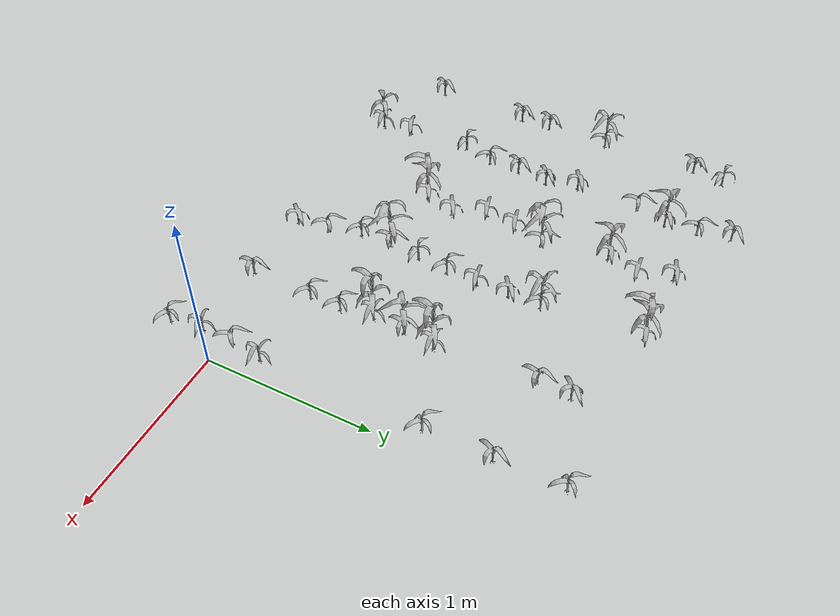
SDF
<sdf version="1.7">
 <world name="default">
  <model name="maize_-2.6063401319936164_0.07500000000000018">
   <static>1</static>
   <link name="link">
    <inertial>
     <mass>0.2</mass>
     <inertia>
      <ixx>0.166667</ixx>
      <ixy>0</ixy>
      <ixz>0</ixz>
      <iyy>0.166667</iyy>
      <iyz>0</iyz>
      <izz>0.166667</izz>
     </inertia>
    </inertial>
    <collision name="collision">
     <geometry><mesh><uri>model://corn_3/meshes/corn.dae</uri><scale>0.25 0.25 0.25</scale></mesh></geometry>
     <surface>
      <friction><ode><mu>0</mu><mu2>0</mu2></ode></friction>
      <contact><ode><kp>0</kp><kd>0</kd><max_vel>0</max_vel><min_depth>0.002</min_depth></ode></contact>
     </surface>
    </collision>
    <visual name="visual">
     <geometry><mesh><uri>model://corn_3/meshes/corn.dae</uri><scale>0.25 0.25 0.25</scale></mesh></geometry>
    </visual>
    <velocity_decay><linear>0</linear><angular>0</angular></velocity_decay>
   </link>
   <pose>-2.60634 0.075 0.05 0 -0 1.16403</pose>
  </model>
  <model name="maize_-2.588101636005906_0.6600000000000001">
   <static>1</static>
   <link name="link">
    <inertial>
     <mass>0.2</mass>
     <inertia>
      <ixx>0.166667</ixx>
      <ixy>0</ixy>
      <ixz>0</ixz>
      <iyy>0.166667</iyy>
      <iyz>0</iyz>
      <izz>0.166667</izz>
     </inertia>
    </inertial>
    <collision name="collision">
     <geometry><mesh><uri>model://corn_3/meshes/corn.dae</uri><scale>0.25 0.25 0.25</scale></mesh></geometry>
     <surface>
      <friction><ode><mu>0</mu><mu2>0</mu2></ode></friction>
      <contact><ode><kp>0</kp><kd>0</kd><max_vel>0</max_vel><min_depth>0.002</min_depth></ode></contact>
     </surface>
    </collision>
    <visual name="visual">
     <geometry><mesh><uri>model://corn_3/meshes/corn.dae</uri><scale>0.25 0.25 0.25</scale></mesh></geometry>
    </visual>
    <velocity_decay><linear>0</linear><angular>0</angular></velocity_decay>
   </link>
   <pose>-2.5881 0.66 0.05 0 -0 1.17576</pose>
  </model>
  <model name="maize_-2.5877143751891136_0.8550000000000004">
   <static>1</static>
   <link name="link">
    <inertial>
     <mass>0.2</mass>
     <inertia>
      <ixx>0.166667</ixx>
      <ixy>0</ixy>
      <ixz>0</ixz>
      <iyy>0.166667</iyy>
      <iyz>0</iyz>
      <izz>0.166667</izz>
     </inertia>
    </inertial>
    <collision name="collision">
     <geometry><mesh><uri>model://corn_3/meshes/corn.dae</uri><scale>0.25 0.25 0.25</scale></mesh></geometry>
     <surface>
      <friction><ode><mu>0</mu><mu2>0</mu2></ode></friction>
      <contact><ode><kp>0</kp><kd>0</kd><max_vel>0</max_vel><min_depth>0.002</min_depth></ode></contact>
     </surface>
    </collision>
    <visual name="visual">
     <geometry><mesh><uri>model://corn_3/meshes/corn.dae</uri><scale>0.25 0.25 0.25</scale></mesh></geometry>
    </visual>
    <velocity_decay><linear>0</linear><angular>0</angular></velocity_decay>
   </link>
   <pose>-2.58771 0.855 0.05 0 -0 1.15578</pose>
  </model>
  <model name="maize_-2.585542033847532_1.245">
   <static>1</static>
   <link name="link">
    <inertial>
     <mass>0.2</mass>
     <inertia>
      <ixx>0.166667</ixx>
      <ixy>0</ixy>
      <ixz>0</ixz>
      <iyy>0.166667</iyy>
      <iyz>0</iyz>
      <izz>0.166667</izz>
     </inertia>
    </inertial>
    <collision name="collision">
     <geometry><mesh><uri>model://corn_4/meshes/corn.dae</uri><scale>0.25 0.25 0.25</scale></mesh></geometry>
     <surface>
      <friction><ode><mu>0</mu><mu2>0</mu2></ode></friction>
      <contact><ode><kp>0</kp><kd>0</kd><max_vel>0</max_vel><min_depth>0.002</min_depth></ode></contact>
     </surface>
    </collision>
    <visual name="visual">
     <geometry><mesh><uri>model://corn_4/meshes/corn.dae</uri><scale>0.25 0.25 0.25</scale></mesh></geometry>
    </visual>
    <velocity_decay><linear>0</linear><angular>0</angular></velocity_decay>
   </link>
   <pose>-2.58554 1.245 0.05 0 -0 2.13369</pose>
  </model>
  <model name="maize_-2.608226631972405_1.83">
   <static>1</static>
   <link name="link">
    <inertial>
     <mass>0.2</mass>
     <inertia>
      <ixx>0.166667</ixx>
      <ixy>0</ixy>
      <ixz>0</ixz>
      <iyy>0.166667</iyy>
      <iyz>0</iyz>
      <izz>0.166667</izz>
     </inertia>
    </inertial>
    <collision name="collision">
     <geometry><mesh><uri>model://corn_3/meshes/corn.dae</uri><scale>0.25 0.25 0.25</scale></mesh></geometry>
     <surface>
      <friction><ode><mu>0</mu><mu2>0</mu2></ode></friction>
      <contact><ode><kp>0</kp><kd>0</kd><max_vel>0</max_vel><min_depth>0.002</min_depth></ode></contact>
     </surface>
    </collision>
    <visual name="visual">
     <geometry><mesh><uri>model://corn_3/meshes/corn.dae</uri><scale>0.25 0.25 0.25</scale></mesh></geometry>
    </visual>
    <velocity_decay><linear>0</linear><angular>0</angular></velocity_decay>
   </link>
   <pose>-2.60823 1.83 0.05 0 -0 1.07333</pose>
  </model>
  <model name="maize_-2.575589637799434_2.0250000000000004">
   <static>1</static>
   <link name="link">
    <inertial>
     <mass>0.2</mass>
     <inertia>
      <ixx>0.166667</ixx>
      <ixy>0</ixy>
      <ixz>0</ixz>
      <iyy>0.166667</iyy>
      <iyz>0</iyz>
      <izz>0.166667</izz>
     </inertia>
    </inertial>
    <collision name="collision">
     <geometry><mesh><uri>model://corn_3/meshes/corn.dae</uri><scale>0.25 0.25 0.25</scale></mesh></geometry>
     <surface>
      <friction><ode><mu>0</mu><mu2>0</mu2></ode></friction>
      <contact><ode><kp>0</kp><kd>0</kd><max_vel>0</max_vel><min_depth>0.002</min_depth></ode></contact>
     </surface>
    </collision>
    <visual name="visual">
     <geometry><mesh><uri>model://corn_3/meshes/corn.dae</uri><scale>0.25 0.25 0.25</scale></mesh></geometry>
    </visual>
    <velocity_decay><linear>0</linear><angular>0</angular></velocity_decay>
   </link>
   <pose>-2.57559 2.025 0.05 0 -0 2.99659</pose>
  </model>
  <model name="maize_-2.1157385612852697_-0.1200000000000001">
   <static>1</static>
   <link name="link">
    <inertial>
     <mass>0.2</mass>
     <inertia>
      <ixx>0.166667</ixx>
      <ixy>0</ixy>
      <ixz>0</ixz>
      <iyy>0.166667</iyy>
      <iyz>0</iyz>
      <izz>0.166667</izz>
     </inertia>
    </inertial>
    <collision name="collision">
     <geometry><mesh><uri>model://corn_4/meshes/corn.dae</uri><scale>0.25 0.25 0.25</scale></mesh></geometry>
     <surface>
      <friction><ode><mu>0</mu><mu2>0</mu2></ode></friction>
      <contact><ode><kp>0</kp><kd>0</kd><max_vel>0</max_vel><min_depth>0.002</min_depth></ode></contact>
     </surface>
    </collision>
    <visual name="visual">
     <geometry><mesh><uri>model://corn_4/meshes/corn.dae</uri><scale>0.25 0.25 0.25</scale></mesh></geometry>
    </visual>
    <velocity_decay><linear>0</linear><angular>0</angular></velocity_decay>
   </link>
   <pose>-2.11574 -0.12 0.05 0 -0 0.167618</pose>
  </model>
  <model name="maize_-2.129276832453321_0.07500000000000018">
   <static>1</static>
   <link name="link">
    <inertial>
     <mass>0.2</mass>
     <inertia>
      <ixx>0.166667</ixx>
      <ixy>0</ixy>
      <ixz>0</ixz>
      <iyy>0.166667</iyy>
      <iyz>0</iyz>
      <izz>0.166667</izz>
     </inertia>
    </inertial>
    <collision name="collision">
     <geometry><mesh><uri>model://corn_3/meshes/corn.dae</uri><scale>0.25 0.25 0.25</scale></mesh></geometry>
     <surface>
      <friction><ode><mu>0</mu><mu2>0</mu2></ode></friction>
      <contact><ode><kp>0</kp><kd>0</kd><max_vel>0</max_vel><min_depth>0.002</min_depth></ode></contact>
     </surface>
    </collision>
    <visual name="visual">
     <geometry><mesh><uri>model://corn_3/meshes/corn.dae</uri><scale>0.25 0.25 0.25</scale></mesh></geometry>
    </visual>
    <velocity_decay><linear>0</linear><angular>0</angular></velocity_decay>
   </link>
   <pose>-2.12928 0.075 0.05 0 -0 0.419549</pose>
  </model>
  <model name="maize_-2.156761907249118_0.46500000000000075">
   <static>1</static>
   <link name="link">
    <inertial>
     <mass>0.2</mass>
     <inertia>
      <ixx>0.166667</ixx>
      <ixy>0</ixy>
      <ixz>0</ixz>
      <iyy>0.166667</iyy>
      <iyz>0</iyz>
      <izz>0.166667</izz>
     </inertia>
    </inertial>
    <collision name="collision">
     <geometry><mesh><uri>model://corn_3/meshes/corn.dae</uri><scale>0.25 0.25 0.25</scale></mesh></geometry>
     <surface>
      <friction><ode><mu>0</mu><mu2>0</mu2></ode></friction>
      <contact><ode><kp>0</kp><kd>0</kd><max_vel>0</max_vel><min_depth>0.002</min_depth></ode></contact>
     </surface>
    </collision>
    <visual name="visual">
     <geometry><mesh><uri>model://corn_3/meshes/corn.dae</uri><scale>0.25 0.25 0.25</scale></mesh></geometry>
    </visual>
    <velocity_decay><linear>0</linear><angular>0</angular></velocity_decay>
   </link>
   <pose>-2.15676 0.465 0.05 0 -0 3.10047</pose>
  </model>
  <model name="maize_-2.0960210611735683_0.6600000000000001">
   <static>1</static>
   <link name="link">
    <inertial>
     <mass>0.2</mass>
     <inertia>
      <ixx>0.166667</ixx>
      <ixy>0</ixy>
      <ixz>0</ixz>
      <iyy>0.166667</iyy>
      <iyz>0</iyz>
      <izz>0.166667</izz>
     </inertia>
    </inertial>
    <collision name="collision">
     <geometry><mesh><uri>model://corn_3/meshes/corn.dae</uri><scale>0.25 0.25 0.25</scale></mesh></geometry>
     <surface>
      <friction><ode><mu>0</mu><mu2>0</mu2></ode></friction>
      <contact><ode><kp>0</kp><kd>0</kd><max_vel>0</max_vel><min_depth>0.002</min_depth></ode></contact>
     </surface>
    </collision>
    <visual name="visual">
     <geometry><mesh><uri>model://corn_3/meshes/corn.dae</uri><scale>0.25 0.25 0.25</scale></mesh></geometry>
    </visual>
    <velocity_decay><linear>0</linear><angular>0</angular></velocity_decay>
   </link>
   <pose>-2.09602 0.66 0.05 0 -0 2.32397</pose>
  </model>
  <model name="maize_-2.0995878956348037_0.8550000000000004">
   <static>1</static>
   <link name="link">
    <inertial>
     <mass>0.2</mass>
     <inertia>
      <ixx>0.166667</ixx>
      <ixy>0</ixy>
      <ixz>0</ixz>
      <iyy>0.166667</iyy>
      <iyz>0</iyz>
      <izz>0.166667</izz>
     </inertia>
    </inertial>
    <collision name="collision">
     <geometry><mesh><uri>model://corn_3/meshes/corn.dae</uri><scale>0.25 0.25 0.25</scale></mesh></geometry>
     <surface>
      <friction><ode><mu>0</mu><mu2>0</mu2></ode></friction>
      <contact><ode><kp>0</kp><kd>0</kd><max_vel>0</max_vel><min_depth>0.002</min_depth></ode></contact>
     </surface>
    </collision>
    <visual name="visual">
     <geometry><mesh><uri>model://corn_3/meshes/corn.dae</uri><scale>0.25 0.25 0.25</scale></mesh></geometry>
    </visual>
    <velocity_decay><linear>0</linear><angular>0</angular></velocity_decay>
   </link>
   <pose>-2.09959 0.855 0.05 0 -0 1.1771</pose>
  </model>
  <model name="maize_-2.0798256883792483_1.0500000000000007">
   <static>1</static>
   <link name="link">
    <inertial>
     <mass>0.2</mass>
     <inertia>
      <ixx>0.166667</ixx>
      <ixy>0</ixy>
      <ixz>0</ixz>
      <iyy>0.166667</iyy>
      <iyz>0</iyz>
      <izz>0.166667</izz>
     </inertia>
    </inertial>
    <collision name="collision">
     <geometry><mesh><uri>model://corn_3/meshes/corn.dae</uri><scale>0.25 0.25 0.25</scale></mesh></geometry>
     <surface>
      <friction><ode><mu>0</mu><mu2>0</mu2></ode></friction>
      <contact><ode><kp>0</kp><kd>0</kd><max_vel>0</max_vel><min_depth>0.002</min_depth></ode></contact>
     </surface>
    </collision>
    <visual name="visual">
     <geometry><mesh><uri>model://corn_3/meshes/corn.dae</uri><scale>0.25 0.25 0.25</scale></mesh></geometry>
    </visual>
    <velocity_decay><linear>0</linear><angular>0</angular></velocity_decay>
   </link>
   <pose>-2.07983 1.05 0.05 0 -0 0.885245</pose>
  </model>
  <model name="maize_-2.126718128030405_1.245">
   <static>1</static>
   <link name="link">
    <inertial>
     <mass>0.2</mass>
     <inertia>
      <ixx>0.166667</ixx>
      <ixy>0</ixy>
      <ixz>0</ixz>
      <iyy>0.166667</iyy>
      <iyz>0</iyz>
      <izz>0.166667</izz>
     </inertia>
    </inertial>
    <collision name="collision">
     <geometry><mesh><uri>model://corn_3/meshes/corn.dae</uri><scale>0.25 0.25 0.25</scale></mesh></geometry>
     <surface>
      <friction><ode><mu>0</mu><mu2>0</mu2></ode></friction>
      <contact><ode><kp>0</kp><kd>0</kd><max_vel>0</max_vel><min_depth>0.002</min_depth></ode></contact>
     </surface>
    </collision>
    <visual name="visual">
     <geometry><mesh><uri>model://corn_3/meshes/corn.dae</uri><scale>0.25 0.25 0.25</scale></mesh></geometry>
    </visual>
    <velocity_decay><linear>0</linear><angular>0</angular></velocity_decay>
   </link>
   <pose>-2.12672 1.245 0.05 0 -0 0.642948</pose>
  </model>
  <model name="maize_-2.117609915493876_1.6350000000000007">
   <static>1</static>
   <link name="link">
    <inertial>
     <mass>0.2</mass>
     <inertia>
      <ixx>0.166667</ixx>
      <ixy>0</ixy>
      <ixz>0</ixz>
      <iyy>0.166667</iyy>
      <iyz>0</iyz>
      <izz>0.166667</izz>
     </inertia>
    </inertial>
    <collision name="collision">
     <geometry><mesh><uri>model://corn_3/meshes/corn.dae</uri><scale>0.25 0.25 0.25</scale></mesh></geometry>
     <surface>
      <friction><ode><mu>0</mu><mu2>0</mu2></ode></friction>
      <contact><ode><kp>0</kp><kd>0</kd><max_vel>0</max_vel><min_depth>0.002</min_depth></ode></contact>
     </surface>
    </collision>
    <visual name="visual">
     <geometry><mesh><uri>model://corn_3/meshes/corn.dae</uri><scale>0.25 0.25 0.25</scale></mesh></geometry>
    </visual>
    <velocity_decay><linear>0</linear><angular>0</angular></velocity_decay>
   </link>
   <pose>-2.11761 1.635 0.05 0 -0 1.7949</pose>
  </model>
  <model name="maize_-2.05956948109465_1.83">
   <static>1</static>
   <link name="link">
    <inertial>
     <mass>0.2</mass>
     <inertia>
      <ixx>0.166667</ixx>
      <ixy>0</ixy>
      <ixz>0</ixz>
      <iyy>0.166667</iyy>
      <iyz>0</iyz>
      <izz>0.166667</izz>
     </inertia>
    </inertial>
    <collision name="collision">
     <geometry><mesh><uri>model://corn_4/meshes/corn.dae</uri><scale>0.25 0.25 0.25</scale></mesh></geometry>
     <surface>
      <friction><ode><mu>0</mu><mu2>0</mu2></ode></friction>
      <contact><ode><kp>0</kp><kd>0</kd><max_vel>0</max_vel><min_depth>0.002</min_depth></ode></contact>
     </surface>
    </collision>
    <visual name="visual">
     <geometry><mesh><uri>model://corn_4/meshes/corn.dae</uri><scale>0.25 0.25 0.25</scale></mesh></geometry>
    </visual>
    <velocity_decay><linear>0</linear><angular>0</angular></velocity_decay>
   </link>
   <pose>-2.05957 1.83 0.05 0 -0 0.683004</pose>
  </model>
  <model name="maize_-2.075829909603941_2.0250000000000004">
   <static>1</static>
   <link name="link">
    <inertial>
     <mass>0.2</mass>
     <inertia>
      <ixx>0.166667</ixx>
      <ixy>0</ixy>
      <ixz>0</ixz>
      <iyy>0.166667</iyy>
      <iyz>0</iyz>
      <izz>0.166667</izz>
     </inertia>
    </inertial>
    <collision name="collision">
     <geometry><mesh><uri>model://corn_3/meshes/corn.dae</uri><scale>0.25 0.25 0.25</scale></mesh></geometry>
     <surface>
      <friction><ode><mu>0</mu><mu2>0</mu2></ode></friction>
      <contact><ode><kp>0</kp><kd>0</kd><max_vel>0</max_vel><min_depth>0.002</min_depth></ode></contact>
     </surface>
    </collision>
    <visual name="visual">
     <geometry><mesh><uri>model://corn_3/meshes/corn.dae</uri><scale>0.25 0.25 0.25</scale></mesh></geometry>
    </visual>
    <velocity_decay><linear>0</linear><angular>0</angular></velocity_decay>
   </link>
   <pose>-2.07583 2.025 0.05 0 -0 2.037</pose>
  </model>
  <model name="maize_-2.1252953353602706_2.2200000000000006">
   <static>1</static>
   <link name="link">
    <inertial>
     <mass>0.2</mass>
     <inertia>
      <ixx>0.166667</ixx>
      <ixy>0</ixy>
      <ixz>0</ixz>
      <iyy>0.166667</iyy>
      <iyz>0</iyz>
      <izz>0.166667</izz>
     </inertia>
    </inertial>
    <collision name="collision">
     <geometry><mesh><uri>model://corn_3/meshes/corn.dae</uri><scale>0.25 0.25 0.25</scale></mesh></geometry>
     <surface>
      <friction><ode><mu>0</mu><mu2>0</mu2></ode></friction>
      <contact><ode><kp>0</kp><kd>0</kd><max_vel>0</max_vel><min_depth>0.002</min_depth></ode></contact>
     </surface>
    </collision>
    <visual name="visual">
     <geometry><mesh><uri>model://corn_3/meshes/corn.dae</uri><scale>0.25 0.25 0.25</scale></mesh></geometry>
    </visual>
    <velocity_decay><linear>0</linear><angular>0</angular></velocity_decay>
   </link>
   <pose>-2.12529 2.22 0.05 0 -0 0.857335</pose>
  </model>
  <model name="maize_-1.6239611559850142_0.46500000000000075">
   <static>1</static>
   <link name="link">
    <inertial>
     <mass>0.2</mass>
     <inertia>
      <ixx>0.166667</ixx>
      <ixy>0</ixy>
      <ixz>0</ixz>
      <iyy>0.166667</iyy>
      <iyz>0</iyz>
      <izz>0.166667</izz>
     </inertia>
    </inertial>
    <collision name="collision">
     <geometry><mesh><uri>model://corn_5/meshes/corn.dae</uri><scale>0.25 0.25 0.25</scale></mesh></geometry>
     <surface>
      <friction><ode><mu>0</mu><mu2>0</mu2></ode></friction>
      <contact><ode><kp>0</kp><kd>0</kd><max_vel>0</max_vel><min_depth>0.002</min_depth></ode></contact>
     </surface>
    </collision>
    <visual name="visual">
     <geometry><mesh><uri>model://corn_5/meshes/corn.dae</uri><scale>0.25 0.25 0.25</scale></mesh></geometry>
    </visual>
    <velocity_decay><linear>0</linear><angular>0</angular></velocity_decay>
   </link>
   <pose>-1.62396 0.465 0.05 0 -0 0.589417</pose>
  </model>
  <model name="maize_-1.564001727999122_0.6600000000000001">
   <static>1</static>
   <link name="link">
    <inertial>
     <mass>0.2</mass>
     <inertia>
      <ixx>0.166667</ixx>
      <ixy>0</ixy>
      <ixz>0</ixz>
      <iyy>0.166667</iyy>
      <iyz>0</iyz>
      <izz>0.166667</izz>
     </inertia>
    </inertial>
    <collision name="collision">
     <geometry><mesh><uri>model://corn_3/meshes/corn.dae</uri><scale>0.25 0.25 0.25</scale></mesh></geometry>
     <surface>
      <friction><ode><mu>0</mu><mu2>0</mu2></ode></friction>
      <contact><ode><kp>0</kp><kd>0</kd><max_vel>0</max_vel><min_depth>0.002</min_depth></ode></contact>
     </surface>
    </collision>
    <visual name="visual">
     <geometry><mesh><uri>model://corn_3/meshes/corn.dae</uri><scale>0.25 0.25 0.25</scale></mesh></geometry>
    </visual>
    <velocity_decay><linear>0</linear><angular>0</angular></velocity_decay>
   </link>
   <pose>-1.564 0.66 0.05 0 -0 0.604994</pose>
  </model>
  <model name="maize_-1.6502086319644096_0.8550000000000004">
   <static>1</static>
   <link name="link">
    <inertial>
     <mass>0.2</mass>
     <inertia>
      <ixx>0.166667</ixx>
      <ixy>0</ixy>
      <ixz>0</ixz>
      <iyy>0.166667</iyy>
      <iyz>0</iyz>
      <izz>0.166667</izz>
     </inertia>
    </inertial>
    <collision name="collision">
     <geometry><mesh><uri>model://corn_3/meshes/corn.dae</uri><scale>0.25 0.25 0.25</scale></mesh></geometry>
     <surface>
      <friction><ode><mu>0</mu><mu2>0</mu2></ode></friction>
      <contact><ode><kp>0</kp><kd>0</kd><max_vel>0</max_vel><min_depth>0.002</min_depth></ode></contact>
     </surface>
    </collision>
    <visual name="visual">
     <geometry><mesh><uri>model://corn_3/meshes/corn.dae</uri><scale>0.25 0.25 0.25</scale></mesh></geometry>
    </visual>
    <velocity_decay><linear>0</linear><angular>0</angular></velocity_decay>
   </link>
   <pose>-1.65021 0.855 0.05 0 -0 0.35887</pose>
  </model>
  <model name="maize_-1.623080267966523_1.0500000000000007">
   <static>1</static>
   <link name="link">
    <inertial>
     <mass>0.2</mass>
     <inertia>
      <ixx>0.166667</ixx>
      <ixy>0</ixy>
      <ixz>0</ixz>
      <iyy>0.166667</iyy>
      <iyz>0</iyz>
      <izz>0.166667</izz>
     </inertia>
    </inertial>
    <collision name="collision">
     <geometry><mesh><uri>model://corn_3/meshes/corn.dae</uri><scale>0.25 0.25 0.25</scale></mesh></geometry>
     <surface>
      <friction><ode><mu>0</mu><mu2>0</mu2></ode></friction>
      <contact><ode><kp>0</kp><kd>0</kd><max_vel>0</max_vel><min_depth>0.002</min_depth></ode></contact>
     </surface>
    </collision>
    <visual name="visual">
     <geometry><mesh><uri>model://corn_3/meshes/corn.dae</uri><scale>0.25 0.25 0.25</scale></mesh></geometry>
    </visual>
    <velocity_decay><linear>0</linear><angular>0</angular></velocity_decay>
   </link>
   <pose>-1.62308 1.05 0.05 0 -0 0.354531</pose>
  </model>
  <model name="maize_-1.5654148782305803_1.245">
   <static>1</static>
   <link name="link">
    <inertial>
     <mass>0.2</mass>
     <inertia>
      <ixx>0.166667</ixx>
      <ixy>0</ixy>
      <ixz>0</ixz>
      <iyy>0.166667</iyy>
      <iyz>0</iyz>
      <izz>0.166667</izz>
     </inertia>
    </inertial>
    <collision name="collision">
     <geometry><mesh><uri>model://corn_5/meshes/corn.dae</uri><scale>0.25 0.25 0.25</scale></mesh></geometry>
     <surface>
      <friction><ode><mu>0</mu><mu2>0</mu2></ode></friction>
      <contact><ode><kp>0</kp><kd>0</kd><max_vel>0</max_vel><min_depth>0.002</min_depth></ode></contact>
     </surface>
    </collision>
    <visual name="visual">
     <geometry><mesh><uri>model://corn_5/meshes/corn.dae</uri><scale>0.25 0.25 0.25</scale></mesh></geometry>
    </visual>
    <velocity_decay><linear>0</linear><angular>0</angular></velocity_decay>
   </link>
   <pose>-1.56542 1.245 0.05 0 -0 1.99974</pose>
  </model>
  <model name="maize_-1.6406767518054066_1.6350000000000007">
   <static>1</static>
   <link name="link">
    <inertial>
     <mass>0.2</mass>
     <inertia>
      <ixx>0.166667</ixx>
      <ixy>0</ixy>
      <ixz>0</ixz>
      <iyy>0.166667</iyy>
      <iyz>0</iyz>
      <izz>0.166667</izz>
     </inertia>
    </inertial>
    <collision name="collision">
     <geometry><mesh><uri>model://corn_4/meshes/corn.dae</uri><scale>0.25 0.25 0.25</scale></mesh></geometry>
     <surface>
      <friction><ode><mu>0</mu><mu2>0</mu2></ode></friction>
      <contact><ode><kp>0</kp><kd>0</kd><max_vel>0</max_vel><min_depth>0.002</min_depth></ode></contact>
     </surface>
    </collision>
    <visual name="visual">
     <geometry><mesh><uri>model://corn_4/meshes/corn.dae</uri><scale>0.25 0.25 0.25</scale></mesh></geometry>
    </visual>
    <velocity_decay><linear>0</linear><angular>0</angular></velocity_decay>
   </link>
   <pose>-1.64068 1.635 0.05 0 -0 0.525819</pose>
  </model>
  <model name="maize_-1.5818211434637046_1.83">
   <static>1</static>
   <link name="link">
    <inertial>
     <mass>0.2</mass>
     <inertia>
      <ixx>0.166667</ixx>
      <ixy>0</ixy>
      <ixz>0</ixz>
      <iyy>0.166667</iyy>
      <iyz>0</iyz>
      <izz>0.166667</izz>
     </inertia>
    </inertial>
    <collision name="collision">
     <geometry><mesh><uri>model://corn_3/meshes/corn.dae</uri><scale>0.25 0.25 0.25</scale></mesh></geometry>
     <surface>
      <friction><ode><mu>0</mu><mu2>0</mu2></ode></friction>
      <contact><ode><kp>0</kp><kd>0</kd><max_vel>0</max_vel><min_depth>0.002</min_depth></ode></contact>
     </surface>
    </collision>
    <visual name="visual">
     <geometry><mesh><uri>model://corn_3/meshes/corn.dae</uri><scale>0.25 0.25 0.25</scale></mesh></geometry>
    </visual>
    <velocity_decay><linear>0</linear><angular>0</angular></velocity_decay>
   </link>
   <pose>-1.58182 1.83 0.05 0 -0 0.191509</pose>
  </model>
  <model name="maize_-1.658496293239595_2.0250000000000004">
   <static>1</static>
   <link name="link">
    <inertial>
     <mass>0.2</mass>
     <inertia>
      <ixx>0.166667</ixx>
      <ixy>0</ixy>
      <ixz>0</ixz>
      <iyy>0.166667</iyy>
      <iyz>0</iyz>
      <izz>0.166667</izz>
     </inertia>
    </inertial>
    <collision name="collision">
     <geometry><mesh><uri>model://corn_3/meshes/corn.dae</uri><scale>0.25 0.25 0.25</scale></mesh></geometry>
     <surface>
      <friction><ode><mu>0</mu><mu2>0</mu2></ode></friction>
      <contact><ode><kp>0</kp><kd>0</kd><max_vel>0</max_vel><min_depth>0.002</min_depth></ode></contact>
     </surface>
    </collision>
    <visual name="visual">
     <geometry><mesh><uri>model://corn_3/meshes/corn.dae</uri><scale>0.25 0.25 0.25</scale></mesh></geometry>
    </visual>
    <velocity_decay><linear>0</linear><angular>0</angular></velocity_decay>
   </link>
   <pose>-1.6585 2.025 0.05 0 -0 0.413821</pose>
  </model>
  <model name="maize_-1.0785105172808556_-0.1200000000000001">
   <static>1</static>
   <link name="link">
    <inertial>
     <mass>0.2</mass>
     <inertia>
      <ixx>0.166667</ixx>
      <ixy>0</ixy>
      <ixz>0</ixz>
      <iyy>0.166667</iyy>
      <iyz>0</iyz>
      <izz>0.166667</izz>
     </inertia>
    </inertial>
    <collision name="collision">
     <geometry><mesh><uri>model://corn_3/meshes/corn.dae</uri><scale>0.25 0.25 0.25</scale></mesh></geometry>
     <surface>
      <friction><ode><mu>0</mu><mu2>0</mu2></ode></friction>
      <contact><ode><kp>0</kp><kd>0</kd><max_vel>0</max_vel><min_depth>0.002</min_depth></ode></contact>
     </surface>
    </collision>
    <visual name="visual">
     <geometry><mesh><uri>model://corn_3/meshes/corn.dae</uri><scale>0.25 0.25 0.25</scale></mesh></geometry>
    </visual>
    <velocity_decay><linear>0</linear><angular>0</angular></velocity_decay>
   </link>
   <pose>-1.07851 -0.12 0.05 0 -0 0.899696</pose>
  </model>
  <model name="maize_-1.1016131504314863_0.07500000000000018">
   <static>1</static>
   <link name="link">
    <inertial>
     <mass>0.2</mass>
     <inertia>
      <ixx>0.166667</ixx>
      <ixy>0</ixy>
      <ixz>0</ixz>
      <iyy>0.166667</iyy>
      <iyz>0</iyz>
      <izz>0.166667</izz>
     </inertia>
    </inertial>
    <collision name="collision">
     <geometry><mesh><uri>model://corn_3/meshes/corn.dae</uri><scale>0.25 0.25 0.25</scale></mesh></geometry>
     <surface>
      <friction><ode><mu>0</mu><mu2>0</mu2></ode></friction>
      <contact><ode><kp>0</kp><kd>0</kd><max_vel>0</max_vel><min_depth>0.002</min_depth></ode></contact>
     </surface>
    </collision>
    <visual name="visual">
     <geometry><mesh><uri>model://corn_3/meshes/corn.dae</uri><scale>0.25 0.25 0.25</scale></mesh></geometry>
    </visual>
    <velocity_decay><linear>0</linear><angular>0</angular></velocity_decay>
   </link>
   <pose>-1.10161 0.075 0.05 0 -0 2.27053</pose>
  </model>
  <model name="maize_-1.1600474661601758_0.27000000000000046">
   <static>1</static>
   <link name="link">
    <inertial>
     <mass>0.2</mass>
     <inertia>
      <ixx>0.166667</ixx>
      <ixy>0</ixy>
      <ixz>0</ixz>
      <iyy>0.166667</iyy>
      <iyz>0</iyz>
      <izz>0.166667</izz>
     </inertia>
    </inertial>
    <collision name="collision">
     <geometry><mesh><uri>model://corn_3/meshes/corn.dae</uri><scale>0.25 0.25 0.25</scale></mesh></geometry>
     <surface>
      <friction><ode><mu>0</mu><mu2>0</mu2></ode></friction>
      <contact><ode><kp>0</kp><kd>0</kd><max_vel>0</max_vel><min_depth>0.002</min_depth></ode></contact>
     </surface>
    </collision>
    <visual name="visual">
     <geometry><mesh><uri>model://corn_3/meshes/corn.dae</uri><scale>0.25 0.25 0.25</scale></mesh></geometry>
    </visual>
    <velocity_decay><linear>0</linear><angular>0</angular></velocity_decay>
   </link>
   <pose>-1.16005 0.27 0.05 0 -0 2.6028</pose>
  </model>
  <model name="maize_-1.164751757333123_0.46500000000000075">
   <static>1</static>
   <link name="link">
    <inertial>
     <mass>0.2</mass>
     <inertia>
      <ixx>0.166667</ixx>
      <ixy>0</ixy>
      <ixz>0</ixz>
      <iyy>0.166667</iyy>
      <iyz>0</iyz>
      <izz>0.166667</izz>
     </inertia>
    </inertial>
    <collision name="collision">
     <geometry><mesh><uri>model://corn_5/meshes/corn.dae</uri><scale>0.25 0.25 0.25</scale></mesh></geometry>
     <surface>
      <friction><ode><mu>0</mu><mu2>0</mu2></ode></friction>
      <contact><ode><kp>0</kp><kd>0</kd><max_vel>0</max_vel><min_depth>0.002</min_depth></ode></contact>
     </surface>
    </collision>
    <visual name="visual">
     <geometry><mesh><uri>model://corn_5/meshes/corn.dae</uri><scale>0.25 0.25 0.25</scale></mesh></geometry>
    </visual>
    <velocity_decay><linear>0</linear><angular>0</angular></velocity_decay>
   </link>
   <pose>-1.16475 0.465 0.05 0 -0 1.77177</pose>
  </model>
  <model name="maize_-1.1424107226295321_0.6600000000000001">
   <static>1</static>
   <link name="link">
    <inertial>
     <mass>0.2</mass>
     <inertia>
      <ixx>0.166667</ixx>
      <ixy>0</ixy>
      <ixz>0</ixz>
      <iyy>0.166667</iyy>
      <iyz>0</iyz>
      <izz>0.166667</izz>
     </inertia>
    </inertial>
    <collision name="collision">
     <geometry><mesh><uri>model://corn_3/meshes/corn.dae</uri><scale>0.25 0.25 0.25</scale></mesh></geometry>
     <surface>
      <friction><ode><mu>0</mu><mu2>0</mu2></ode></friction>
      <contact><ode><kp>0</kp><kd>0</kd><max_vel>0</max_vel><min_depth>0.002</min_depth></ode></contact>
     </surface>
    </collision>
    <visual name="visual">
     <geometry><mesh><uri>model://corn_3/meshes/corn.dae</uri><scale>0.25 0.25 0.25</scale></mesh></geometry>
    </visual>
    <velocity_decay><linear>0</linear><angular>0</angular></velocity_decay>
   </link>
   <pose>-1.14241 0.66 0.05 0 -0 3.13934</pose>
  </model>
  <model name="maize_-1.1228776452156501_0.8550000000000004">
   <static>1</static>
   <link name="link">
    <inertial>
     <mass>0.2</mass>
     <inertia>
      <ixx>0.166667</ixx>
      <ixy>0</ixy>
      <ixz>0</ixz>
      <iyy>0.166667</iyy>
      <iyz>0</iyz>
      <izz>0.166667</izz>
     </inertia>
    </inertial>
    <collision name="collision">
     <geometry><mesh><uri>model://corn_3/meshes/corn.dae</uri><scale>0.25 0.25 0.25</scale></mesh></geometry>
     <surface>
      <friction><ode><mu>0</mu><mu2>0</mu2></ode></friction>
      <contact><ode><kp>0</kp><kd>0</kd><max_vel>0</max_vel><min_depth>0.002</min_depth></ode></contact>
     </surface>
    </collision>
    <visual name="visual">
     <geometry><mesh><uri>model://corn_3/meshes/corn.dae</uri><scale>0.25 0.25 0.25</scale></mesh></geometry>
    </visual>
    <velocity_decay><linear>0</linear><angular>0</angular></velocity_decay>
   </link>
   <pose>-1.12288 0.855 0.05 0 -0 2.64002</pose>
  </model>
  <model name="maize_-1.1125719314408196_1.0500000000000007">
   <static>1</static>
   <link name="link">
    <inertial>
     <mass>0.2</mass>
     <inertia>
      <ixx>0.166667</ixx>
      <ixy>0</ixy>
      <ixz>0</ixz>
      <iyy>0.166667</iyy>
      <iyz>0</iyz>
      <izz>0.166667</izz>
     </inertia>
    </inertial>
    <collision name="collision">
     <geometry><mesh><uri>model://corn_3/meshes/corn.dae</uri><scale>0.25 0.25 0.25</scale></mesh></geometry>
     <surface>
      <friction><ode><mu>0</mu><mu2>0</mu2></ode></friction>
      <contact><ode><kp>0</kp><kd>0</kd><max_vel>0</max_vel><min_depth>0.002</min_depth></ode></contact>
     </surface>
    </collision>
    <visual name="visual">
     <geometry><mesh><uri>model://corn_3/meshes/corn.dae</uri><scale>0.25 0.25 0.25</scale></mesh></geometry>
    </visual>
    <velocity_decay><linear>0</linear><angular>0</angular></velocity_decay>
   </link>
   <pose>-1.11257 1.05 0.05 0 -0 0.29408</pose>
  </model>
  <model name="maize_-1.110992743079516_1.245">
   <static>1</static>
   <link name="link">
    <inertial>
     <mass>0.2</mass>
     <inertia>
      <ixx>0.166667</ixx>
      <ixy>0</ixy>
      <ixz>0</ixz>
      <iyy>0.166667</iyy>
      <iyz>0</iyz>
      <izz>0.166667</izz>
     </inertia>
    </inertial>
    <collision name="collision">
     <geometry><mesh><uri>model://corn_3/meshes/corn.dae</uri><scale>0.25 0.25 0.25</scale></mesh></geometry>
     <surface>
      <friction><ode><mu>0</mu><mu2>0</mu2></ode></friction>
      <contact><ode><kp>0</kp><kd>0</kd><max_vel>0</max_vel><min_depth>0.002</min_depth></ode></contact>
     </surface>
    </collision>
    <visual name="visual">
     <geometry><mesh><uri>model://corn_3/meshes/corn.dae</uri><scale>0.25 0.25 0.25</scale></mesh></geometry>
    </visual>
    <velocity_decay><linear>0</linear><angular>0</angular></velocity_decay>
   </link>
   <pose>-1.11099 1.245 0.05 0 -0 0.734485</pose>
  </model>
  <model name="maize_-1.1183882684194175_1.4400000000000004">
   <static>1</static>
   <link name="link">
    <inertial>
     <mass>0.2</mass>
     <inertia>
      <ixx>0.166667</ixx>
      <ixy>0</ixy>
      <ixz>0</ixz>
      <iyy>0.166667</iyy>
      <iyz>0</iyz>
      <izz>0.166667</izz>
     </inertia>
    </inertial>
    <collision name="collision">
     <geometry><mesh><uri>model://corn_4/meshes/corn.dae</uri><scale>0.25 0.25 0.25</scale></mesh></geometry>
     <surface>
      <friction><ode><mu>0</mu><mu2>0</mu2></ode></friction>
      <contact><ode><kp>0</kp><kd>0</kd><max_vel>0</max_vel><min_depth>0.002</min_depth></ode></contact>
     </surface>
    </collision>
    <visual name="visual">
     <geometry><mesh><uri>model://corn_4/meshes/corn.dae</uri><scale>0.25 0.25 0.25</scale></mesh></geometry>
    </visual>
    <velocity_decay><linear>0</linear><angular>0</angular></velocity_decay>
   </link>
   <pose>-1.11839 1.44 0.05 0 -0 2.41082</pose>
  </model>
  <model name="maize_-1.163059209926602_2.0250000000000004">
   <static>1</static>
   <link name="link">
    <inertial>
     <mass>0.2</mass>
     <inertia>
      <ixx>0.166667</ixx>
      <ixy>0</ixy>
      <ixz>0</ixz>
      <iyy>0.166667</iyy>
      <iyz>0</iyz>
      <izz>0.166667</izz>
     </inertia>
    </inertial>
    <collision name="collision">
     <geometry><mesh><uri>model://corn_5/meshes/corn.dae</uri><scale>0.25 0.25 0.25</scale></mesh></geometry>
     <surface>
      <friction><ode><mu>0</mu><mu2>0</mu2></ode></friction>
      <contact><ode><kp>0</kp><kd>0</kd><max_vel>0</max_vel><min_depth>0.002</min_depth></ode></contact>
     </surface>
    </collision>
    <visual name="visual">
     <geometry><mesh><uri>model://corn_5/meshes/corn.dae</uri><scale>0.25 0.25 0.25</scale></mesh></geometry>
    </visual>
    <velocity_decay><linear>0</linear><angular>0</angular></velocity_decay>
   </link>
   <pose>-1.16306 2.025 0.05 0 -0 0.356843</pose>
  </model>
  <model name="maize_-0.6155347143750395_-0.1200000000000001">
   <static>1</static>
   <link name="link">
    <inertial>
     <mass>0.2</mass>
     <inertia>
      <ixx>0.166667</ixx>
      <ixy>0</ixy>
      <ixz>0</ixz>
      <iyy>0.166667</iyy>
      <iyz>0</iyz>
      <izz>0.166667</izz>
     </inertia>
    </inertial>
    <collision name="collision">
     <geometry><mesh><uri>model://corn_3/meshes/corn.dae</uri><scale>0.25 0.25 0.25</scale></mesh></geometry>
     <surface>
      <friction><ode><mu>0</mu><mu2>0</mu2></ode></friction>
      <contact><ode><kp>0</kp><kd>0</kd><max_vel>0</max_vel><min_depth>0.002</min_depth></ode></contact>
     </surface>
    </collision>
    <visual name="visual">
     <geometry><mesh><uri>model://corn_3/meshes/corn.dae</uri><scale>0.25 0.25 0.25</scale></mesh></geometry>
    </visual>
    <velocity_decay><linear>0</linear><angular>0</angular></velocity_decay>
   </link>
   <pose>-0.615535 -0.12 0.05 0 -0 1.63117</pose>
  </model>
  <model name="maize_-0.5989917329764636_0.27000000000000046">
   <static>1</static>
   <link name="link">
    <inertial>
     <mass>0.2</mass>
     <inertia>
      <ixx>0.166667</ixx>
      <ixy>0</ixy>
      <ixz>0</ixz>
      <iyy>0.166667</iyy>
      <iyz>0</iyz>
      <izz>0.166667</izz>
     </inertia>
    </inertial>
    <collision name="collision">
     <geometry><mesh><uri>model://corn_3/meshes/corn.dae</uri><scale>0.25 0.25 0.25</scale></mesh></geometry>
     <surface>
      <friction><ode><mu>0</mu><mu2>0</mu2></ode></friction>
      <contact><ode><kp>0</kp><kd>0</kd><max_vel>0</max_vel><min_depth>0.002</min_depth></ode></contact>
     </surface>
    </collision>
    <visual name="visual">
     <geometry><mesh><uri>model://corn_3/meshes/corn.dae</uri><scale>0.25 0.25 0.25</scale></mesh></geometry>
    </visual>
    <velocity_decay><linear>0</linear><angular>0</angular></velocity_decay>
   </link>
   <pose>-0.598992 0.27 0.05 0 -0 2.608</pose>
  </model>
  <model name="maize_-0.5965819672082464_0.46500000000000075">
   <static>1</static>
   <link name="link">
    <inertial>
     <mass>0.2</mass>
     <inertia>
      <ixx>0.166667</ixx>
      <ixy>0</ixy>
      <ixz>0</ixz>
      <iyy>0.166667</iyy>
      <iyz>0</iyz>
      <izz>0.166667</izz>
     </inertia>
    </inertial>
    <collision name="collision">
     <geometry><mesh><uri>model://corn_3/meshes/corn.dae</uri><scale>0.25 0.25 0.25</scale></mesh></geometry>
     <surface>
      <friction><ode><mu>0</mu><mu2>0</mu2></ode></friction>
      <contact><ode><kp>0</kp><kd>0</kd><max_vel>0</max_vel><min_depth>0.002</min_depth></ode></contact>
     </surface>
    </collision>
    <visual name="visual">
     <geometry><mesh><uri>model://corn_3/meshes/corn.dae</uri><scale>0.25 0.25 0.25</scale></mesh></geometry>
    </visual>
    <velocity_decay><linear>0</linear><angular>0</angular></velocity_decay>
   </link>
   <pose>-0.596582 0.465 0.05 0 -0 2.54149</pose>
  </model>
  <model name="maize_-0.6280394909891335_0.6600000000000001">
   <static>1</static>
   <link name="link">
    <inertial>
     <mass>0.2</mass>
     <inertia>
      <ixx>0.166667</ixx>
      <ixy>0</ixy>
      <ixz>0</ixz>
      <iyy>0.166667</iyy>
      <iyz>0</iyz>
      <izz>0.166667</izz>
     </inertia>
    </inertial>
    <collision name="collision">
     <geometry><mesh><uri>model://corn_5/meshes/corn.dae</uri><scale>0.25 0.25 0.25</scale></mesh></geometry>
     <surface>
      <friction><ode><mu>0</mu><mu2>0</mu2></ode></friction>
      <contact><ode><kp>0</kp><kd>0</kd><max_vel>0</max_vel><min_depth>0.002</min_depth></ode></contact>
     </surface>
    </collision>
    <visual name="visual">
     <geometry><mesh><uri>model://corn_5/meshes/corn.dae</uri><scale>0.25 0.25 0.25</scale></mesh></geometry>
    </visual>
    <velocity_decay><linear>0</linear><angular>0</angular></velocity_decay>
   </link>
   <pose>-0.628039 0.66 0.05 0 -0 0.047428</pose>
  </model>
  <model name="maize_-0.6148038074552706_0.8550000000000004">
   <static>1</static>
   <link name="link">
    <inertial>
     <mass>0.2</mass>
     <inertia>
      <ixx>0.166667</ixx>
      <ixy>0</ixy>
      <ixz>0</ixz>
      <iyy>0.166667</iyy>
      <iyz>0</iyz>
      <izz>0.166667</izz>
     </inertia>
    </inertial>
    <collision name="collision">
     <geometry><mesh><uri>model://corn_4/meshes/corn.dae</uri><scale>0.25 0.25 0.25</scale></mesh></geometry>
     <surface>
      <friction><ode><mu>0</mu><mu2>0</mu2></ode></friction>
      <contact><ode><kp>0</kp><kd>0</kd><max_vel>0</max_vel><min_depth>0.002</min_depth></ode></contact>
     </surface>
    </collision>
    <visual name="visual">
     <geometry><mesh><uri>model://corn_4/meshes/corn.dae</uri><scale>0.25 0.25 0.25</scale></mesh></geometry>
    </visual>
    <velocity_decay><linear>0</linear><angular>0</angular></velocity_decay>
   </link>
   <pose>-0.614804 0.855 0.05 0 -0 1.56133</pose>
  </model>
  <model name="maize_-0.5894747283847155_1.0500000000000007">
   <static>1</static>
   <link name="link">
    <inertial>
     <mass>0.2</mass>
     <inertia>
      <ixx>0.166667</ixx>
      <ixy>0</ixy>
      <ixz>0</ixz>
      <iyy>0.166667</iyy>
      <iyz>0</iyz>
      <izz>0.166667</izz>
     </inertia>
    </inertial>
    <collision name="collision">
     <geometry><mesh><uri>model://corn_5/meshes/corn.dae</uri><scale>0.25 0.25 0.25</scale></mesh></geometry>
     <surface>
      <friction><ode><mu>0</mu><mu2>0</mu2></ode></friction>
      <contact><ode><kp>0</kp><kd>0</kd><max_vel>0</max_vel><min_depth>0.002</min_depth></ode></contact>
     </surface>
    </collision>
    <visual name="visual">
     <geometry><mesh><uri>model://corn_5/meshes/corn.dae</uri><scale>0.25 0.25 0.25</scale></mesh></geometry>
    </visual>
    <velocity_decay><linear>0</linear><angular>0</angular></velocity_decay>
   </link>
   <pose>-0.589475 1.05 0.05 0 -0 0.074602</pose>
  </model>
  <model name="maize_-0.6352006234595838_1.6350000000000007">
   <static>1</static>
   <link name="link">
    <inertial>
     <mass>0.2</mass>
     <inertia>
      <ixx>0.166667</ixx>
      <ixy>0</ixy>
      <ixz>0</ixz>
      <iyy>0.166667</iyy>
      <iyz>0</iyz>
      <izz>0.166667</izz>
     </inertia>
    </inertial>
    <collision name="collision">
     <geometry><mesh><uri>model://corn_3/meshes/corn.dae</uri><scale>0.25 0.25 0.25</scale></mesh></geometry>
     <surface>
      <friction><ode><mu>0</mu><mu2>0</mu2></ode></friction>
      <contact><ode><kp>0</kp><kd>0</kd><max_vel>0</max_vel><min_depth>0.002</min_depth></ode></contact>
     </surface>
    </collision>
    <visual name="visual">
     <geometry><mesh><uri>model://corn_3/meshes/corn.dae</uri><scale>0.25 0.25 0.25</scale></mesh></geometry>
    </visual>
    <velocity_decay><linear>0</linear><angular>0</angular></velocity_decay>
   </link>
   <pose>-0.635201 1.635 0.05 0 -0 1.52941</pose>
  </model>
  <model name="maize_-0.6230016513582938_1.83">
   <static>1</static>
   <link name="link">
    <inertial>
     <mass>0.2</mass>
     <inertia>
      <ixx>0.166667</ixx>
      <ixy>0</ixy>
      <ixz>0</ixz>
      <iyy>0.166667</iyy>
      <iyz>0</iyz>
      <izz>0.166667</izz>
     </inertia>
    </inertial>
    <collision name="collision">
     <geometry><mesh><uri>model://corn_3/meshes/corn.dae</uri><scale>0.25 0.25 0.25</scale></mesh></geometry>
     <surface>
      <friction><ode><mu>0</mu><mu2>0</mu2></ode></friction>
      <contact><ode><kp>0</kp><kd>0</kd><max_vel>0</max_vel><min_depth>0.002</min_depth></ode></contact>
     </surface>
    </collision>
    <visual name="visual">
     <geometry><mesh><uri>model://corn_3/meshes/corn.dae</uri><scale>0.25 0.25 0.25</scale></mesh></geometry>
    </visual>
    <velocity_decay><linear>0</linear><angular>0</angular></velocity_decay>
   </link>
   <pose>-0.623002 1.83 0.05 0 -0 0.894132</pose>
  </model>
  <model name="maize_-0.09998143229654344_-0.3149999999999995">
   <static>1</static>
   <link name="link">
    <inertial>
     <mass>0.2</mass>
     <inertia>
      <ixx>0.166667</ixx>
      <ixy>0</ixy>
      <ixz>0</ixz>
      <iyy>0.166667</iyy>
      <iyz>0</iyz>
      <izz>0.166667</izz>
     </inertia>
    </inertial>
    <collision name="collision">
     <geometry><mesh><uri>model://corn_3/meshes/corn.dae</uri><scale>0.25 0.25 0.25</scale></mesh></geometry>
     <surface>
      <friction><ode><mu>0</mu><mu2>0</mu2></ode></friction>
      <contact><ode><kp>0</kp><kd>0</kd><max_vel>0</max_vel><min_depth>0.002</min_depth></ode></contact>
     </surface>
    </collision>
    <visual name="visual">
     <geometry><mesh><uri>model://corn_3/meshes/corn.dae</uri><scale>0.25 0.25 0.25</scale></mesh></geometry>
    </visual>
    <velocity_decay><linear>0</linear><angular>0</angular></velocity_decay>
   </link>
   <pose>-0.099981 -0.315 0.05 0 -0 2.86652</pose>
  </model>
  <model name="maize_-0.13043067772017333_-0.1200000000000001">
   <static>1</static>
   <link name="link">
    <inertial>
     <mass>0.2</mass>
     <inertia>
      <ixx>0.166667</ixx>
      <ixy>0</ixy>
      <ixz>0</ixz>
      <iyy>0.166667</iyy>
      <iyz>0</iyz>
      <izz>0.166667</izz>
     </inertia>
    </inertial>
    <collision name="collision">
     <geometry><mesh><uri>model://corn_3/meshes/corn.dae</uri><scale>0.25 0.25 0.25</scale></mesh></geometry>
     <surface>
      <friction><ode><mu>0</mu><mu2>0</mu2></ode></friction>
      <contact><ode><kp>0</kp><kd>0</kd><max_vel>0</max_vel><min_depth>0.002</min_depth></ode></contact>
     </surface>
    </collision>
    <visual name="visual">
     <geometry><mesh><uri>model://corn_3/meshes/corn.dae</uri><scale>0.25 0.25 0.25</scale></mesh></geometry>
    </visual>
    <velocity_decay><linear>0</linear><angular>0</angular></velocity_decay>
   </link>
   <pose>-0.130431 -0.12 0.05 0 -0 0.374594</pose>
  </model>
  <model name="maize_-0.12503965766385763_0.07500000000000018">
   <static>1</static>
   <link name="link">
    <inertial>
     <mass>0.2</mass>
     <inertia>
      <ixx>0.166667</ixx>
      <ixy>0</ixy>
      <ixz>0</ixz>
      <iyy>0.166667</iyy>
      <iyz>0</iyz>
      <izz>0.166667</izz>
     </inertia>
    </inertial>
    <collision name="collision">
     <geometry><mesh><uri>model://corn_3/meshes/corn.dae</uri><scale>0.25 0.25 0.25</scale></mesh></geometry>
     <surface>
      <friction><ode><mu>0</mu><mu2>0</mu2></ode></friction>
      <contact><ode><kp>0</kp><kd>0</kd><max_vel>0</max_vel><min_depth>0.002</min_depth></ode></contact>
     </surface>
    </collision>
    <visual name="visual">
     <geometry><mesh><uri>model://corn_3/meshes/corn.dae</uri><scale>0.25 0.25 0.25</scale></mesh></geometry>
    </visual>
    <velocity_decay><linear>0</linear><angular>0</angular></velocity_decay>
   </link>
   <pose>-0.12504 0.075 0.05 0 -0 2.21899</pose>
  </model>
  <model name="maize_-0.09975357288756885_0.27000000000000046">
   <static>1</static>
   <link name="link">
    <inertial>
     <mass>0.2</mass>
     <inertia>
      <ixx>0.166667</ixx>
      <ixy>0</ixy>
      <ixz>0</ixz>
      <iyy>0.166667</iyy>
      <iyz>0</iyz>
      <izz>0.166667</izz>
     </inertia>
    </inertial>
    <collision name="collision">
     <geometry><mesh><uri>model://corn_3/meshes/corn.dae</uri><scale>0.25 0.25 0.25</scale></mesh></geometry>
     <surface>
      <friction><ode><mu>0</mu><mu2>0</mu2></ode></friction>
      <contact><ode><kp>0</kp><kd>0</kd><max_vel>0</max_vel><min_depth>0.002</min_depth></ode></contact>
     </surface>
    </collision>
    <visual name="visual">
     <geometry><mesh><uri>model://corn_3/meshes/corn.dae</uri><scale>0.25 0.25 0.25</scale></mesh></geometry>
    </visual>
    <velocity_decay><linear>0</linear><angular>0</angular></velocity_decay>
   </link>
   <pose>-0.099754 0.27 0.05 0 -0 0.024459</pose>
  </model>
  <model name="maize_-0.09991733679434014_1.245">
   <static>1</static>
   <link name="link">
    <inertial>
     <mass>0.2</mass>
     <inertia>
      <ixx>0.166667</ixx>
      <ixy>0</ixy>
      <ixz>0</ixz>
      <iyy>0.166667</iyy>
      <iyz>0</iyz>
      <izz>0.166667</izz>
     </inertia>
    </inertial>
    <collision name="collision">
     <geometry><mesh><uri>model://corn_3/meshes/corn.dae</uri><scale>0.25 0.25 0.25</scale></mesh></geometry>
     <surface>
      <friction><ode><mu>0</mu><mu2>0</mu2></ode></friction>
      <contact><ode><kp>0</kp><kd>0</kd><max_vel>0</max_vel><min_depth>0.002</min_depth></ode></contact>
     </surface>
    </collision>
    <visual name="visual">
     <geometry><mesh><uri>model://corn_3/meshes/corn.dae</uri><scale>0.25 0.25 0.25</scale></mesh></geometry>
    </visual>
    <velocity_decay><linear>0</linear><angular>0</angular></velocity_decay>
   </link>
   <pose>-0.099917 1.245 0.05 0 -0 2.62182</pose>
  </model>
  <model name="maize_-0.09962832462420709_1.6350000000000007">
   <static>1</static>
   <link name="link">
    <inertial>
     <mass>0.2</mass>
     <inertia>
      <ixx>0.166667</ixx>
      <ixy>0</ixy>
      <ixz>0</ixz>
      <iyy>0.166667</iyy>
      <iyz>0</iyz>
      <izz>0.166667</izz>
     </inertia>
    </inertial>
    <collision name="collision">
     <geometry><mesh><uri>model://corn_3/meshes/corn.dae</uri><scale>0.25 0.25 0.25</scale></mesh></geometry>
     <surface>
      <friction><ode><mu>0</mu><mu2>0</mu2></ode></friction>
      <contact><ode><kp>0</kp><kd>0</kd><max_vel>0</max_vel><min_depth>0.002</min_depth></ode></contact>
     </surface>
    </collision>
    <visual name="visual">
     <geometry><mesh><uri>model://corn_3/meshes/corn.dae</uri><scale>0.25 0.25 0.25</scale></mesh></geometry>
    </visual>
    <velocity_decay><linear>0</linear><angular>0</angular></velocity_decay>
   </link>
   <pose>-0.099628 1.635 0.05 0 -0 1.29093</pose>
  </model>
  <model name="maize_-0.11052638116656797_2.0250000000000004">
   <static>1</static>
   <link name="link">
    <inertial>
     <mass>0.2</mass>
     <inertia>
      <ixx>0.166667</ixx>
      <ixy>0</ixy>
      <ixz>0</ixz>
      <iyy>0.166667</iyy>
      <iyz>0</iyz>
      <izz>0.166667</izz>
     </inertia>
    </inertial>
    <collision name="collision">
     <geometry><mesh><uri>model://corn_3/meshes/corn.dae</uri><scale>0.25 0.25 0.25</scale></mesh></geometry>
     <surface>
      <friction><ode><mu>0</mu><mu2>0</mu2></ode></friction>
      <contact><ode><kp>0</kp><kd>0</kd><max_vel>0</max_vel><min_depth>0.002</min_depth></ode></contact>
     </surface>
    </collision>
    <visual name="visual">
     <geometry><mesh><uri>model://corn_3/meshes/corn.dae</uri><scale>0.25 0.25 0.25</scale></mesh></geometry>
    </visual>
    <velocity_decay><linear>0</linear><angular>0</angular></velocity_decay>
   </link>
   <pose>-0.110526 2.025 0.05 0 -0 2.35582</pose>
  </model>
 </world>
</sdf>
